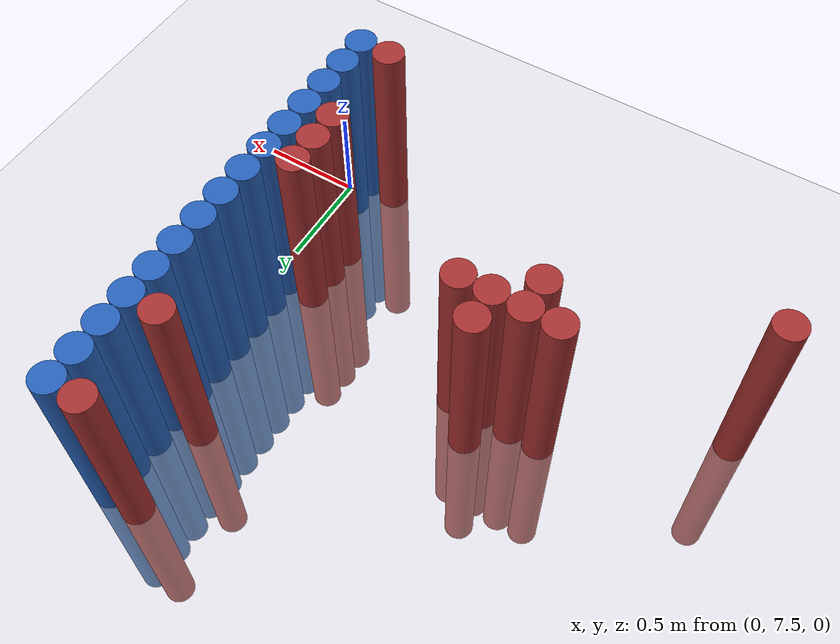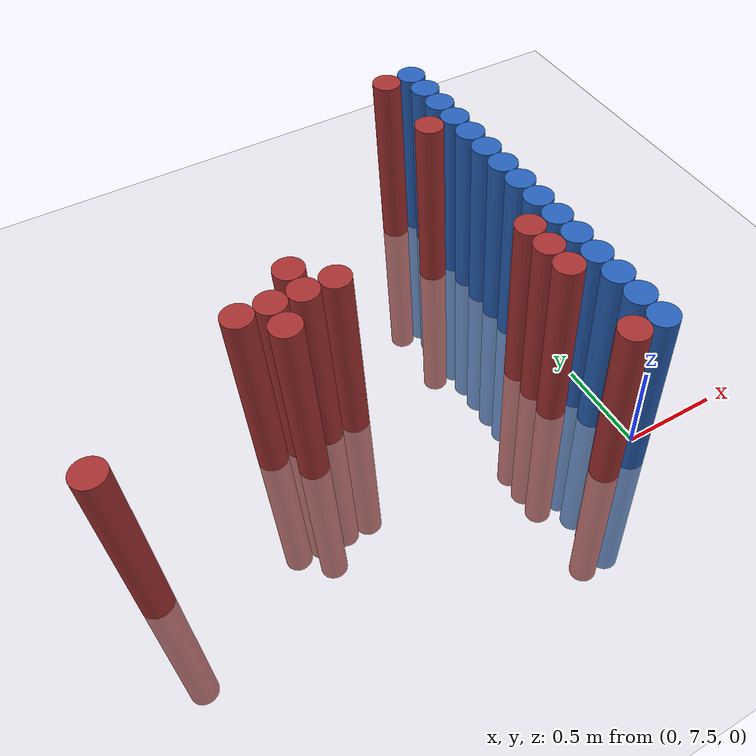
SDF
<sdf version="1.6">
 <world name="default">
  <model name="ground_plane">
   <static>1</static>
   <link name="link">
    <collision name="collision">
     <geometry><plane><normal>0 0 1</normal><size>100 100</size></plane></geometry>
     <surface><friction><ode><mu>100</mu><mu2>50</mu2></ode></friction></surface>
    </collision>
    <visual name="visual">
     <cast_shadows>0</cast_shadows>
     <geometry><plane><normal>0 0 1</normal><size>100 100</size></plane></geometry>
     <material>
      <script><uri>file://media/materials/scripts/gazebo.material</uri><name>Gazebo/Grey</name></script>
     </material>
    </visual>
   </link>
  </model>
  <model name="unit_cylinder_158">
   <static>1</static>
   <pose>-2.325000 7.875000 0.000000 0.000000 0.000000 0.000000</pose>
   <link name="link">
    <inertial>
     <mass>1</mass>
     <inertia><ixx>0.145833</ixx><ixy>0</ixy><ixz>0</ixz><iyy>0.145833</iyy><iyz>0</iyz><izz>0.125</izz></inertia>
    </inertial>
    <collision name="collision">
     <geometry><cylinder><radius>0.075000</radius><length>2</length></cylinder></geometry>
    </collision>
    <visual name="visual">
     <geometry><cylinder><radius>0.075000</radius><length>2</length></cylinder></geometry>
     <material>
      <ambient>0.648000 0.192000 0.192000 1</ambient>
      <diffuse>0.648000 0.192000 0.192000 1</diffuse>
     </material>
     <material>
      <script><name>Gazebo/Grey</name><uri>file://media/materials/scripts/gazebo.material</uri></script>
     </material>
    </visual>
   </link>
  </model>
  <model name="unit_cylinder_164">
   <static>1</static>
   <pose>-1.575000 8.325000 0.000000 0.000000 0.000000 0.000000</pose>
   <link name="link">
    <inertial>
     <mass>1</mass>
     <inertia><ixx>0.145833</ixx><ixy>0</ixy><ixz>0</ixz><iyy>0.145833</iyy><iyz>0</iyz><izz>0.125</izz></inertia>
    </inertial>
    <collision name="collision">
     <geometry><cylinder><radius>0.075000</radius><length>2</length></cylinder></geometry>
    </collision>
    <visual name="visual">
     <geometry><cylinder><radius>0.075000</radius><length>2</length></cylinder></geometry>
     <material>
      <ambient>0.648000 0.192000 0.192000 1</ambient>
      <diffuse>0.648000 0.192000 0.192000 1</diffuse>
     </material>
     <material>
      <script><name>Gazebo/Grey</name><uri>file://media/materials/scripts/gazebo.material</uri></script>
     </material>
    </visual>
   </link>
  </model>
  <model name="unit_cylinder_169">
   <static>1</static>
   <pose>-1.425000 8.175000 0.000000 0.000000 0.000000 0.000000</pose>
   <link name="link">
    <inertial>
     <mass>1</mass>
     <inertia><ixx>0.145833</ixx><ixy>0</ixy><ixz>0</ixz><iyy>0.145833</iyy><iyz>0</iyz><izz>0.125</izz></inertia>
    </inertial>
    <collision name="collision">
     <geometry><cylinder><radius>0.075000</radius><length>2</length></cylinder></geometry>
    </collision>
    <visual name="visual">
     <geometry><cylinder><radius>0.075000</radius><length>2</length></cylinder></geometry>
     <material>
      <ambient>0.648000 0.192000 0.192000 1</ambient>
      <diffuse>0.648000 0.192000 0.192000 1</diffuse>
     </material>
     <material>
      <script><name>Gazebo/Grey</name><uri>file://media/materials/scripts/gazebo.material</uri></script>
     </material>
    </visual>
   </link>
  </model>
  <model name="unit_cylinder_170">
   <static>1</static>
   <pose>-1.425000 8.325000 0.000000 0.000000 0.000000 0.000000</pose>
   <link name="link">
    <inertial>
     <mass>1</mass>
     <inertia><ixx>0.145833</ixx><ixy>0</ixy><ixz>0</ixz><iyy>0.145833</iyy><iyz>0</iyz><izz>0.125</izz></inertia>
    </inertial>
    <collision name="collision">
     <geometry><cylinder><radius>0.075000</radius><length>2</length></cylinder></geometry>
    </collision>
    <visual name="visual">
     <geometry><cylinder><radius>0.075000</radius><length>2</length></cylinder></geometry>
     <material>
      <ambient>0.648000 0.192000 0.192000 1</ambient>
      <diffuse>0.648000 0.192000 0.192000 1</diffuse>
     </material>
     <material>
      <script><name>Gazebo/Grey</name><uri>file://media/materials/scripts/gazebo.material</uri></script>
     </material>
    </visual>
   </link>
  </model>
  <model name="unit_cylinder_173">
   <static>1</static>
   <pose>-1.275000 8.325000 0.000000 0.000000 0.000000 0.000000</pose>
   <link name="link">
    <inertial>
     <mass>1</mass>
     <inertia><ixx>0.145833</ixx><ixy>0</ixy><ixz>0</ixz><iyy>0.145833</iyy><iyz>0</iyz><izz>0.125</izz></inertia>
    </inertial>
    <collision name="collision">
     <geometry><cylinder><radius>0.075000</radius><length>2</length></cylinder></geometry>
    </collision>
    <visual name="visual">
     <geometry><cylinder><radius>0.075000</radius><length>2</length></cylinder></geometry>
     <material>
      <ambient>0.648000 0.192000 0.192000 1</ambient>
      <diffuse>0.648000 0.192000 0.192000 1</diffuse>
     </material>
     <material>
      <script><name>Gazebo/Grey</name><uri>file://media/materials/scripts/gazebo.material</uri></script>
     </material>
    </visual>
   </link>
  </model>
  <model name="unit_cylinder_174">
   <static>1</static>
   <pose>-1.275000 8.475000 0.000000 0.000000 0.000000 0.000000</pose>
   <link name="link">
    <inertial>
     <mass>1</mass>
     <inertia><ixx>0.145833</ixx><ixy>0</ixy><ixz>0</ixz><iyy>0.145833</iyy><iyz>0</iyz><izz>0.125</izz></inertia>
    </inertial>
    <collision name="collision">
     <geometry><cylinder><radius>0.075000</radius><length>2</length></cylinder></geometry>
    </collision>
    <visual name="visual">
     <geometry><cylinder><radius>0.075000</radius><length>2</length></cylinder></geometry>
     <material>
      <ambient>0.648000 0.192000 0.192000 1</ambient>
      <diffuse>0.648000 0.192000 0.192000 1</diffuse>
     </material>
     <material>
      <script><name>Gazebo/Grey</name><uri>file://media/materials/scripts/gazebo.material</uri></script>
     </material>
    </visual>
   </link>
  </model>
  <model name="unit_cylinder_175">
   <static>1</static>
   <pose>-1.125000 8.325000 0.000000 0.000000 0.000000 0.000000</pose>
   <link name="link">
    <inertial>
     <mass>1</mass>
     <inertia><ixx>0.145833</ixx><ixy>0</ixy><ixz>0</ixz><iyy>0.145833</iyy><iyz>0</iyz><izz>0.125</izz></inertia>
    </inertial>
    <collision name="collision">
     <geometry><cylinder><radius>0.075000</radius><length>2</length></cylinder></geometry>
    </collision>
    <visual name="visual">
     <geometry><cylinder><radius>0.075000</radius><length>2</length></cylinder></geometry>
     <material>
      <ambient>0.648000 0.192000 0.192000 1</ambient>
      <diffuse>0.648000 0.192000 0.192000 1</diffuse>
     </material>
     <material>
      <script><name>Gazebo/Grey</name><uri>file://media/materials/scripts/gazebo.material</uri></script>
     </material>
    </visual>
   </link>
  </model>
  <model name="unit_cylinder_182">
   <static>1</static>
   <pose>-0.225000 7.425000 0.000000 0.000000 0.000000 0.000000</pose>
   <link name="link">
    <inertial>
     <mass>1</mass>
     <inertia><ixx>0.145833</ixx><ixy>0</ixy><ixz>0</ixz><iyy>0.145833</iyy><iyz>0</iyz><izz>0.125</izz></inertia>
    </inertial>
    <collision name="collision">
     <geometry><cylinder><radius>0.075000</radius><length>2</length></cylinder></geometry>
    </collision>
    <visual name="visual">
     <geometry><cylinder><radius>0.075000</radius><length>2</length></cylinder></geometry>
     <material>
      <ambient>0.648000 0.192000 0.192000 1</ambient>
      <diffuse>0.648000 0.192000 0.192000 1</diffuse>
     </material>
     <material>
      <script><name>Gazebo/Grey</name><uri>file://media/materials/scripts/gazebo.material</uri></script>
     </material>
    </visual>
   </link>
  </model>
  <model name="unit_cylinder_183">
   <static>1</static>
   <pose>-0.225000 7.875000 0.000000 0.000000 0.000000 0.000000</pose>
   <link name="link">
    <inertial>
     <mass>1</mass>
     <inertia><ixx>0.145833</ixx><ixy>0</ixy><ixz>0</ixz><iyy>0.145833</iyy><iyz>0</iyz><izz>0.125</izz></inertia>
    </inertial>
    <collision name="collision">
     <geometry><cylinder><radius>0.075000</radius><length>2</length></cylinder></geometry>
    </collision>
    <visual name="visual">
     <geometry><cylinder><radius>0.075000</radius><length>2</length></cylinder></geometry>
     <material>
      <ambient>0.648000 0.192000 0.192000 1</ambient>
      <diffuse>0.648000 0.192000 0.192000 1</diffuse>
     </material>
     <material>
      <script><name>Gazebo/Grey</name><uri>file://media/materials/scripts/gazebo.material</uri></script>
     </material>
    </visual>
   </link>
  </model>
  <model name="unit_cylinder_184">
   <static>1</static>
   <pose>-0.225000 8.025000 0.000000 0.000000 0.000000 0.000000</pose>
   <link name="link">
    <inertial>
     <mass>1</mass>
     <inertia><ixx>0.145833</ixx><ixy>0</ixy><ixz>0</ixz><iyy>0.145833</iyy><iyz>0</iyz><izz>0.125</izz></inertia>
    </inertial>
    <collision name="collision">
     <geometry><cylinder><radius>0.075000</radius><length>2</length></cylinder></geometry>
    </collision>
    <visual name="visual">
     <geometry><cylinder><radius>0.075000</radius><length>2</length></cylinder></geometry>
     <material>
      <ambient>0.648000 0.192000 0.192000 1</ambient>
      <diffuse>0.648000 0.192000 0.192000 1</diffuse>
     </material>
     <material>
      <script><name>Gazebo/Grey</name><uri>file://media/materials/scripts/gazebo.material</uri></script>
     </material>
    </visual>
   </link>
  </model>
  <model name="unit_cylinder_185">
   <static>1</static>
   <pose>-0.225000 8.175000 0.000000 0.000000 0.000000 0.000000</pose>
   <link name="link">
    <inertial>
     <mass>1</mass>
     <inertia><ixx>0.145833</ixx><ixy>0</ixy><ixz>0</ixz><iyy>0.145833</iyy><iyz>0</iyz><izz>0.125</izz></inertia>
    </inertial>
    <collision name="collision">
     <geometry><cylinder><radius>0.075000</radius><length>2</length></cylinder></geometry>
    </collision>
    <visual name="visual">
     <geometry><cylinder><radius>0.075000</radius><length>2</length></cylinder></geometry>
     <material>
      <ambient>0.648000 0.192000 0.192000 1</ambient>
      <diffuse>0.648000 0.192000 0.192000 1</diffuse>
     </material>
     <material>
      <script><name>Gazebo/Grey</name><uri>file://media/materials/scripts/gazebo.material</uri></script>
     </material>
    </visual>
   </link>
  </model>
  <model name="unit_cylinder_186">
   <static>1</static>
   <pose>-0.225000 9.075000 0.000000 0.000000 0.000000 0.000000</pose>
   <link name="link">
    <inertial>
     <mass>1</mass>
     <inertia><ixx>0.145833</ixx><ixy>0</ixy><ixz>0</ixz><iyy>0.145833</iyy><iyz>0</iyz><izz>0.125</izz></inertia>
    </inertial>
    <collision name="collision">
     <geometry><cylinder><radius>0.075000</radius><length>2</length></cylinder></geometry>
    </collision>
    <visual name="visual">
     <geometry><cylinder><radius>0.075000</radius><length>2</length></cylinder></geometry>
     <material>
      <ambient>0.648000 0.192000 0.192000 1</ambient>
      <diffuse>0.648000 0.192000 0.192000 1</diffuse>
     </material>
     <material>
      <script><name>Gazebo/Grey</name><uri>file://media/materials/scripts/gazebo.material</uri></script>
     </material>
    </visual>
   </link>
  </model>
  <model name="unit_cylinder_187">
   <static>1</static>
   <pose>-0.225000 9.525000 0.000000 0.000000 0.000000 0.000000</pose>
   <link name="link">
    <inertial>
     <mass>1</mass>
     <inertia><ixx>0.145833</ixx><ixy>0</ixy><ixz>0</ixz><iyy>0.145833</iyy><iyz>0</iyz><izz>0.125</izz></inertia>
    </inertial>
    <collision name="collision">
     <geometry><cylinder><radius>0.075000</radius><length>2</length></cylinder></geometry>
    </collision>
    <visual name="visual">
     <geometry><cylinder><radius>0.075000</radius><length>2</length></cylinder></geometry>
     <material>
      <ambient>0.648000 0.192000 0.192000 1</ambient>
      <diffuse>0.648000 0.192000 0.192000 1</diffuse>
     </material>
     <material>
      <script><name>Gazebo/Grey</name><uri>file://media/materials/scripts/gazebo.material</uri></script>
     </material>
    </visual>
   </link>
  </model>
  <model name="unit_cylinder_203">
   <static>1</static>
   <pose>-0.075000 7.425000 0.000000 0.000000 0.000000 0.000000</pose>
   <link name="link">
    <inertial>
     <mass>1</mass>
     <inertia><ixx>0.145833</ixx><ixy>0</ixy><ixz>0</ixz><iyy>0.145833</iyy><iyz>0</iyz><izz>0.125</izz></inertia>
    </inertial>
    <collision name="collision">
     <geometry><cylinder><radius>0.075000</radius><length>2</length></cylinder></geometry>
    </collision>
    <visual name="visual">
     <geometry><cylinder><radius>0.075000</radius><length>2</length></cylinder></geometry>
     <material>
      <ambient>0.152000 0.379000 0.720000 1</ambient>
      <diffuse>0.152000 0.379000 0.720000 1</diffuse>
     </material>
     <material>
      <script><name>Gazebo/Grey</name><uri>file://media/materials/scripts/gazebo.material</uri></script>
     </material>
    </visual>
   </link>
  </model>
  <model name="unit_cylinder_204">
   <static>1</static>
   <pose>-0.075000 7.575000 0.000000 0.000000 0.000000 0.000000</pose>
   <link name="link">
    <inertial>
     <mass>1</mass>
     <inertia><ixx>0.145833</ixx><ixy>0</ixy><ixz>0</ixz><iyy>0.145833</iyy><iyz>0</iyz><izz>0.125</izz></inertia>
    </inertial>
    <collision name="collision">
     <geometry><cylinder><radius>0.075000</radius><length>2</length></cylinder></geometry>
    </collision>
    <visual name="visual">
     <geometry><cylinder><radius>0.075000</radius><length>2</length></cylinder></geometry>
     <material>
      <ambient>0.152000 0.379000 0.720000 1</ambient>
      <diffuse>0.152000 0.379000 0.720000 1</diffuse>
     </material>
     <material>
      <script><name>Gazebo/Grey</name><uri>file://media/materials/scripts/gazebo.material</uri></script>
     </material>
    </visual>
   </link>
  </model>
  <model name="unit_cylinder_205">
   <static>1</static>
   <pose>-0.075000 7.725000 0.000000 0.000000 0.000000 0.000000</pose>
   <link name="link">
    <inertial>
     <mass>1</mass>
     <inertia><ixx>0.145833</ixx><ixy>0</ixy><ixz>0</ixz><iyy>0.145833</iyy><iyz>0</iyz><izz>0.125</izz></inertia>
    </inertial>
    <collision name="collision">
     <geometry><cylinder><radius>0.075000</radius><length>2</length></cylinder></geometry>
    </collision>
    <visual name="visual">
     <geometry><cylinder><radius>0.075000</radius><length>2</length></cylinder></geometry>
     <material>
      <ambient>0.152000 0.379000 0.720000 1</ambient>
      <diffuse>0.152000 0.379000 0.720000 1</diffuse>
     </material>
     <material>
      <script><name>Gazebo/Grey</name><uri>file://media/materials/scripts/gazebo.material</uri></script>
     </material>
    </visual>
   </link>
  </model>
  <model name="unit_cylinder_206">
   <static>1</static>
   <pose>-0.075000 7.875000 0.000000 0.000000 0.000000 0.000000</pose>
   <link name="link">
    <inertial>
     <mass>1</mass>
     <inertia><ixx>0.145833</ixx><ixy>0</ixy><ixz>0</ixz><iyy>0.145833</iyy><iyz>0</iyz><izz>0.125</izz></inertia>
    </inertial>
    <collision name="collision">
     <geometry><cylinder><radius>0.075000</radius><length>2</length></cylinder></geometry>
    </collision>
    <visual name="visual">
     <geometry><cylinder><radius>0.075000</radius><length>2</length></cylinder></geometry>
     <material>
      <ambient>0.152000 0.379000 0.720000 1</ambient>
      <diffuse>0.152000 0.379000 0.720000 1</diffuse>
     </material>
     <material>
      <script><name>Gazebo/Grey</name><uri>file://media/materials/scripts/gazebo.material</uri></script>
     </material>
    </visual>
   </link>
  </model>
  <model name="unit_cylinder_207">
   <static>1</static>
   <pose>-0.075000 8.025000 0.000000 0.000000 0.000000 0.000000</pose>
   <link name="link">
    <inertial>
     <mass>1</mass>
     <inertia><ixx>0.145833</ixx><ixy>0</ixy><ixz>0</ixz><iyy>0.145833</iyy><iyz>0</iyz><izz>0.125</izz></inertia>
    </inertial>
    <collision name="collision">
     <geometry><cylinder><radius>0.075000</radius><length>2</length></cylinder></geometry>
    </collision>
    <visual name="visual">
     <geometry><cylinder><radius>0.075000</radius><length>2</length></cylinder></geometry>
     <material>
      <ambient>0.152000 0.379000 0.720000 1</ambient>
      <diffuse>0.152000 0.379000 0.720000 1</diffuse>
     </material>
     <material>
      <script><name>Gazebo/Grey</name><uri>file://media/materials/scripts/gazebo.material</uri></script>
     </material>
    </visual>
   </link>
  </model>
  <model name="unit_cylinder_208">
   <static>1</static>
   <pose>-0.075000 8.175000 0.000000 0.000000 0.000000 0.000000</pose>
   <link name="link">
    <inertial>
     <mass>1</mass>
     <inertia><ixx>0.145833</ixx><ixy>0</ixy><ixz>0</ixz><iyy>0.145833</iyy><iyz>0</iyz><izz>0.125</izz></inertia>
    </inertial>
    <collision name="collision">
     <geometry><cylinder><radius>0.075000</radius><length>2</length></cylinder></geometry>
    </collision>
    <visual name="visual">
     <geometry><cylinder><radius>0.075000</radius><length>2</length></cylinder></geometry>
     <material>
      <ambient>0.152000 0.379000 0.720000 1</ambient>
      <diffuse>0.152000 0.379000 0.720000 1</diffuse>
     </material>
     <material>
      <script><name>Gazebo/Grey</name><uri>file://media/materials/scripts/gazebo.material</uri></script>
     </material>
    </visual>
   </link>
  </model>
  <model name="unit_cylinder_209">
   <static>1</static>
   <pose>-0.075000 8.325000 0.000000 0.000000 0.000000 0.000000</pose>
   <link name="link">
    <inertial>
     <mass>1</mass>
     <inertia><ixx>0.145833</ixx><ixy>0</ixy><ixz>0</ixz><iyy>0.145833</iyy><iyz>0</iyz><izz>0.125</izz></inertia>
    </inertial>
    <collision name="collision">
     <geometry><cylinder><radius>0.075000</radius><length>2</length></cylinder></geometry>
    </collision>
    <visual name="visual">
     <geometry><cylinder><radius>0.075000</radius><length>2</length></cylinder></geometry>
     <material>
      <ambient>0.152000 0.379000 0.720000 1</ambient>
      <diffuse>0.152000 0.379000 0.720000 1</diffuse>
     </material>
     <material>
      <script><name>Gazebo/Grey</name><uri>file://media/materials/scripts/gazebo.material</uri></script>
     </material>
    </visual>
   </link>
  </model>
  <model name="unit_cylinder_210">
   <static>1</static>
   <pose>-0.075000 8.475000 0.000000 0.000000 0.000000 0.000000</pose>
   <link name="link">
    <inertial>
     <mass>1</mass>
     <inertia><ixx>0.145833</ixx><ixy>0</ixy><ixz>0</ixz><iyy>0.145833</iyy><iyz>0</iyz><izz>0.125</izz></inertia>
    </inertial>
    <collision name="collision">
     <geometry><cylinder><radius>0.075000</radius><length>2</length></cylinder></geometry>
    </collision>
    <visual name="visual">
     <geometry><cylinder><radius>0.075000</radius><length>2</length></cylinder></geometry>
     <material>
      <ambient>0.152000 0.379000 0.720000 1</ambient>
      <diffuse>0.152000 0.379000 0.720000 1</diffuse>
     </material>
     <material>
      <script><name>Gazebo/Grey</name><uri>file://media/materials/scripts/gazebo.material</uri></script>
     </material>
    </visual>
   </link>
  </model>
  <model name="unit_cylinder_211">
   <static>1</static>
   <pose>-0.075000 8.625000 0.000000 0.000000 0.000000 0.000000</pose>
   <link name="link">
    <inertial>
     <mass>1</mass>
     <inertia><ixx>0.145833</ixx><ixy>0</ixy><ixz>0</ixz><iyy>0.145833</iyy><iyz>0</iyz><izz>0.125</izz></inertia>
    </inertial>
    <collision name="collision">
     <geometry><cylinder><radius>0.075000</radius><length>2</length></cylinder></geometry>
    </collision>
    <visual name="visual">
     <geometry><cylinder><radius>0.075000</radius><length>2</length></cylinder></geometry>
     <material>
      <ambient>0.152000 0.379000 0.720000 1</ambient>
      <diffuse>0.152000 0.379000 0.720000 1</diffuse>
     </material>
     <material>
      <script><name>Gazebo/Grey</name><uri>file://media/materials/scripts/gazebo.material</uri></script>
     </material>
    </visual>
   </link>
  </model>
  <model name="unit_cylinder_212">
   <static>1</static>
   <pose>-0.075000 8.775000 0.000000 0.000000 0.000000 0.000000</pose>
   <link name="link">
    <inertial>
     <mass>1</mass>
     <inertia><ixx>0.145833</ixx><ixy>0</ixy><ixz>0</ixz><iyy>0.145833</iyy><iyz>0</iyz><izz>0.125</izz></inertia>
    </inertial>
    <collision name="collision">
     <geometry><cylinder><radius>0.075000</radius><length>2</length></cylinder></geometry>
    </collision>
    <visual name="visual">
     <geometry><cylinder><radius>0.075000</radius><length>2</length></cylinder></geometry>
     <material>
      <ambient>0.152000 0.379000 0.720000 1</ambient>
      <diffuse>0.152000 0.379000 0.720000 1</diffuse>
     </material>
     <material>
      <script><name>Gazebo/Grey</name><uri>file://media/materials/scripts/gazebo.material</uri></script>
     </material>
    </visual>
   </link>
  </model>
  <model name="unit_cylinder_213">
   <static>1</static>
   <pose>-0.075000 8.925000 0.000000 0.000000 0.000000 0.000000</pose>
   <link name="link">
    <inertial>
     <mass>1</mass>
     <inertia><ixx>0.145833</ixx><ixy>0</ixy><ixz>0</ixz><iyy>0.145833</iyy><iyz>0</iyz><izz>0.125</izz></inertia>
    </inertial>
    <collision name="collision">
     <geometry><cylinder><radius>0.075000</radius><length>2</length></cylinder></geometry>
    </collision>
    <visual name="visual">
     <geometry><cylinder><radius>0.075000</radius><length>2</length></cylinder></geometry>
     <material>
      <ambient>0.152000 0.379000 0.720000 1</ambient>
      <diffuse>0.152000 0.379000 0.720000 1</diffuse>
     </material>
     <material>
      <script><name>Gazebo/Grey</name><uri>file://media/materials/scripts/gazebo.material</uri></script>
     </material>
    </visual>
   </link>
  </model>
  <model name="unit_cylinder_214">
   <static>1</static>
   <pose>-0.075000 9.075000 0.000000 0.000000 0.000000 0.000000</pose>
   <link name="link">
    <inertial>
     <mass>1</mass>
     <inertia><ixx>0.145833</ixx><ixy>0</ixy><ixz>0</ixz><iyy>0.145833</iyy><iyz>0</iyz><izz>0.125</izz></inertia>
    </inertial>
    <collision name="collision">
     <geometry><cylinder><radius>0.075000</radius><length>2</length></cylinder></geometry>
    </collision>
    <visual name="visual">
     <geometry><cylinder><radius>0.075000</radius><length>2</length></cylinder></geometry>
     <material>
      <ambient>0.152000 0.379000 0.720000 1</ambient>
      <diffuse>0.152000 0.379000 0.720000 1</diffuse>
     </material>
     <material>
      <script><name>Gazebo/Grey</name><uri>file://media/materials/scripts/gazebo.material</uri></script>
     </material>
    </visual>
   </link>
  </model>
  <model name="unit_cylinder_215">
   <static>1</static>
   <pose>-0.075000 9.225000 0.000000 0.000000 0.000000 0.000000</pose>
   <link name="link">
    <inertial>
     <mass>1</mass>
     <inertia><ixx>0.145833</ixx><ixy>0</ixy><ixz>0</ixz><iyy>0.145833</iyy><iyz>0</iyz><izz>0.125</izz></inertia>
    </inertial>
    <collision name="collision">
     <geometry><cylinder><radius>0.075000</radius><length>2</length></cylinder></geometry>
    </collision>
    <visual name="visual">
     <geometry><cylinder><radius>0.075000</radius><length>2</length></cylinder></geometry>
     <material>
      <ambient>0.152000 0.379000 0.720000 1</ambient>
      <diffuse>0.152000 0.379000 0.720000 1</diffuse>
     </material>
     <material>
      <script><name>Gazebo/Grey</name><uri>file://media/materials/scripts/gazebo.material</uri></script>
     </material>
    </visual>
   </link>
  </model>
  <model name="unit_cylinder_216">
   <static>1</static>
   <pose>-0.075000 9.375000 0.000000 0.000000 0.000000 0.000000</pose>
   <link name="link">
    <inertial>
     <mass>1</mass>
     <inertia><ixx>0.145833</ixx><ixy>0</ixy><ixz>0</ixz><iyy>0.145833</iyy><iyz>0</iyz><izz>0.125</izz></inertia>
    </inertial>
    <collision name="collision">
     <geometry><cylinder><radius>0.075000</radius><length>2</length></cylinder></geometry>
    </collision>
    <visual name="visual">
     <geometry><cylinder><radius>0.075000</radius><length>2</length></cylinder></geometry>
     <material>
      <ambient>0.152000 0.379000 0.720000 1</ambient>
      <diffuse>0.152000 0.379000 0.720000 1</diffuse>
     </material>
     <material>
      <script><name>Gazebo/Grey</name><uri>file://media/materials/scripts/gazebo.material</uri></script>
     </material>
    </visual>
   </link>
  </model>
  <model name="unit_cylinder_217">
   <static>1</static>
   <pose>-0.075000 9.525000 0.000000 0.000000 0.000000 0.000000</pose>
   <link name="link">
    <inertial>
     <mass>1</mass>
     <inertia><ixx>0.145833</ixx><ixy>0</ixy><ixz>0</ixz><iyy>0.145833</iyy><iyz>0</iyz><izz>0.125</izz></inertia>
    </inertial>
    <collision name="collision">
     <geometry><cylinder><radius>0.075000</radius><length>2</length></cylinder></geometry>
    </collision>
    <visual name="visual">
     <geometry><cylinder><radius>0.075000</radius><length>2</length></cylinder></geometry>
     <material>
      <ambient>0.152000 0.379000 0.720000 1</ambient>
      <diffuse>0.152000 0.379000 0.720000 1</diffuse>
     </material>
     <material>
      <script><name>Gazebo/Grey</name><uri>file://media/materials/scripts/gazebo.material</uri></script>
     </material>
    </visual>
   </link>
  </model>
 </world>
</sdf>
